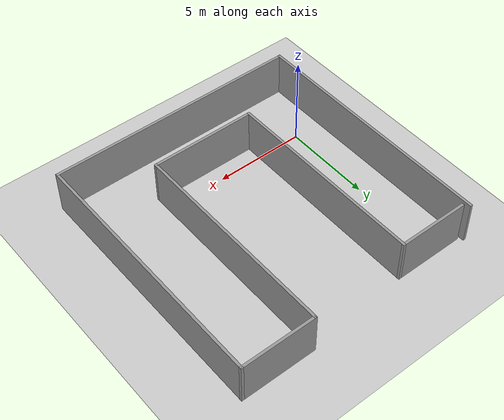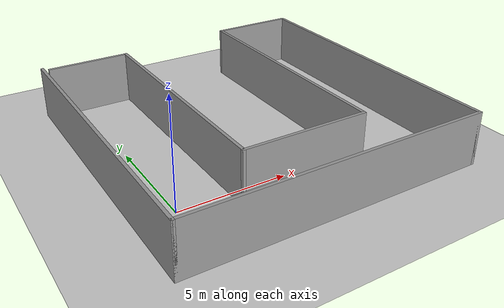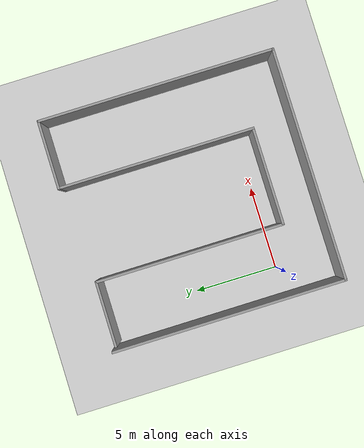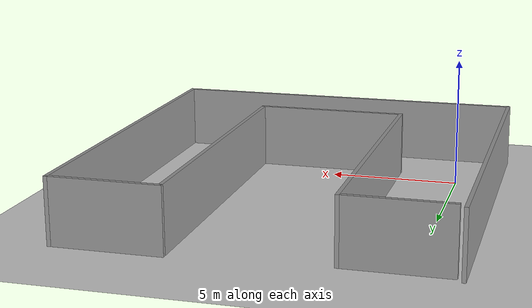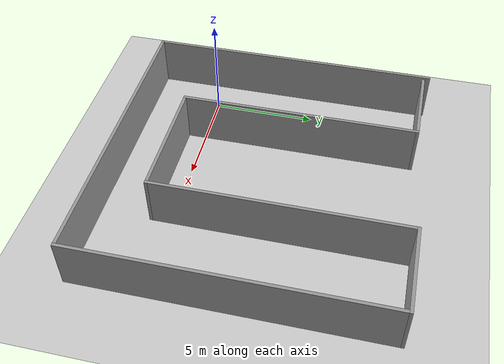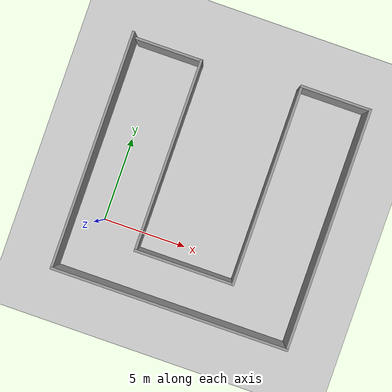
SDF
<sdf version="1.6">
 <world name="default">
  <light name="sun" type="directional">
   <pose>0 0 10 0 -0 0</pose>
   <diffuse>0.8 0.8 0.8 1</diffuse>
   <specular>0.1 0.1 0.1 1</specular>
   <attenuation>
    <range>1000</range>
    <constant>0.9</constant>
    <linear>0.01</linear>
    <quadratic>0.001</quadratic>
   </attenuation>
   <direction>-0.5 0.5 -1</direction>
  </light>
  <model name="ground_plane">
   <static>1</static>
   <link name="link">
    <collision name="collision">
     <geometry><plane><normal>0 0 1</normal><size>100 100</size></plane></geometry>
     <surface><friction><ode><mu>100</mu><mu2>50</mu2></ode></friction></surface>
    </collision>
    <visual name="visual">
     <cast_shadows>0</cast_shadows>
     <geometry><plane><normal>0 0 1</normal><size>100 100</size></plane></geometry>
     <material>
      <script><uri>file://media/materials/scripts/gazebo.material</uri><name>Gazebo/Grey</name></script>
     </material>
    </visual>
   </link>
  </model>
  <gravity>0 0 -9.8</gravity>
  <magnetic_field>6e-06 2.3e-05 -4.2e-05</magnetic_field>
  <atmosphere type="adiabatic"/>
  <physics name="default_physics" default="0" type="ode">
   <max_step_size>0.001</max_step_size>
   <real_time_factor>1</real_time_factor>
   <real_time_update_rate>1000</real_time_update_rate>
  </physics>
  <scene><ambient>0.4 0.4 0.4 1</ambient><background>0.7 0.7 0.7 1</background><shadows>1</shadows></scene>
  <spherical_coordinates>
   <surface_model>EARTH_WGS84</surface_model>
   <latitude_deg>0</latitude_deg>
   <longitude_deg>0</longitude_deg>
   <elevation>0</elevation>
   <heading_deg>0</heading_deg>
  </spherical_coordinates>
  <model name="ulisu12">
   <pose>5.34804 3.73664 0 0 -0 0</pose>
   <link name="Wall_10">
    <collision name="Wall_10_Collision">
     <geometry><box><size>14.25 0.15 2.5</size></box></geometry>
     <pose>0 0 1.25 0 -0 0</pose>
    </collision>
    <visual name="Wall_10_Visual">
     <pose>0 0 1.25 0 -0 0</pose>
     <geometry><box><size>14.25 0.15 2.5</size></box></geometry>
     <material>
      <script><uri>file://media/materials/scripts/gazebo.material</uri><name>Gazebo/Grey</name></script>
      <ambient>1 1 1 1</ambient>
     </material>
    </visual>
    <pose>1e-06 -7.175 0 0 -0 0</pose>
   </link>
   <link name="Wall_11">
    <collision name="Wall_11_Collision">
     <geometry><box><size>14.5 0.15 2.5</size></box></geometry>
     <pose>0 0 1.25 0 -0 0</pose>
    </collision>
    <visual name="Wall_11_Visual">
     <pose>0 0 1.25 0 -0 0</pose>
     <geometry><box><size>14.5 0.15 2.5</size></box></geometry>
     <material>
      <script><uri>file://media/materials/scripts/gazebo.material</uri><name>Gazebo/Grey</name></script>
      <ambient>1 1 1 1</ambient>
     </material>
    </visual>
    <pose>7.05 0 0 0 -0 1.5708</pose>
   </link>
   <link name="Wall_12">
    <collision name="Wall_12_Collision">
     <geometry><box><size>4.25 0.15 2.5</size></box></geometry>
     <pose>0 0 1.25 0 -0 0</pose>
    </collision>
    <visual name="Wall_12_Visual">
     <pose>0 0 1.25 0 -0 0</pose>
     <geometry><box><size>4.25 0.15 2.5</size></box></geometry>
     <material>
      <script><uri>file://media/materials/scripts/gazebo.material</uri><name>Gazebo/Grey</name></script>
      <ambient>1 1 1 1</ambient>
     </material>
    </visual>
    <pose>5 7.175 0 0 -0 3.14159</pose>
   </link>
   <link name="Wall_13">
    <collision name="Wall_13_Collision">
     <geometry><box><size>12 0.15 2.5</size></box></geometry>
     <pose>0 0 1.25 0 -0 0</pose>
    </collision>
    <visual name="Wall_13_Visual">
     <pose>0 0 1.25 0 -0 0</pose>
     <geometry><box><size>12 0.15 2.5</size></box></geometry>
     <material>
      <script><uri>file://media/materials/scripts/gazebo.material</uri><name>Gazebo/Grey</name></script>
      <ambient>1 1 1 1</ambient>
     </material>
    </visual>
    <pose>2.95 1.25 0 0 0 -1.5708</pose>
   </link>
   <link name="Wall_14">
    <collision name="Wall_14_Collision">
     <geometry><box><size>6 0.15 2.5</size></box></geometry>
     <pose>0 0 1.25 0 -0 0</pose>
    </collision>
    <visual name="Wall_14_Visual">
     <pose>0 0 1.25 0 -0 0</pose>
     <geometry><box><size>6 0.15 2.5</size></box></geometry>
     <material>
      <script><uri>file://media/materials/scripts/gazebo.material</uri><name>Gazebo/Grey</name></script>
      <ambient>1 1 1 1</ambient>
     </material>
    </visual>
    <pose>0.025001 -4.675 0 0 -0 3.14159</pose>
   </link>
   <link name="Wall_15">
    <collision name="Wall_15_Collision">
     <geometry><box><size>11.5 0.15 2.5</size></box></geometry>
     <pose>0 0 1.25 0 -0 0</pose>
    </collision>
    <visual name="Wall_15_Visual">
     <pose>0 0 1.25 0 -0 0</pose>
     <geometry><box><size>11.5 0.15 2.5</size></box></geometry>
     <material>
      <script><uri>file://media/materials/scripts/gazebo.material</uri><name>Gazebo/Grey</name></script>
      <ambient>1 1 1 1</ambient>
     </material>
    </visual>
    <pose>-2.9 1 0 0 -0 1.5708</pose>
   </link>
   <link name="Wall_16">
    <collision name="Wall_16_Collision">
     <geometry><box><size>4 0.15 2.5</size></box></geometry>
     <pose>0 0 1.25 0 -0 0</pose>
    </collision>
    <visual name="Wall_16_Visual">
     <pose>0 0 1.25 0 -0 0</pose>
     <geometry><box><size>4 0.15 2.5</size></box></geometry>
     <material>
      <script><uri>file://media/materials/scripts/gazebo.material</uri><name>Gazebo/Grey</name></script>
      <ambient>1 1 1 1</ambient>
     </material>
    </visual>
    <pose>-4.825 6.675 0 0 -0 3.14159</pose>
   </link>
   <link name="Wall_9">
    <collision name="Wall_9_Collision">
     <geometry><box><size>14.25 0.15 2.5</size></box></geometry>
     <pose>0 0 1.25 0 -0 0</pose>
    </collision>
    <visual name="Wall_9_Visual">
     <pose>0 0 1.25 0 -0 0</pose>
     <geometry><box><size>14.25 0.15 2.5</size></box></geometry>
     <material>
      <script><uri>file://media/materials/scripts/gazebo.material</uri><name>Gazebo/Grey</name></script>
      <ambient>1 1 1 1</ambient>
     </material>
    </visual>
    <pose>-7.05 -0.125 0 0 0 -1.5708</pose>
   </link>
   <static>1</static>
  </model>
 </world>
</sdf>
